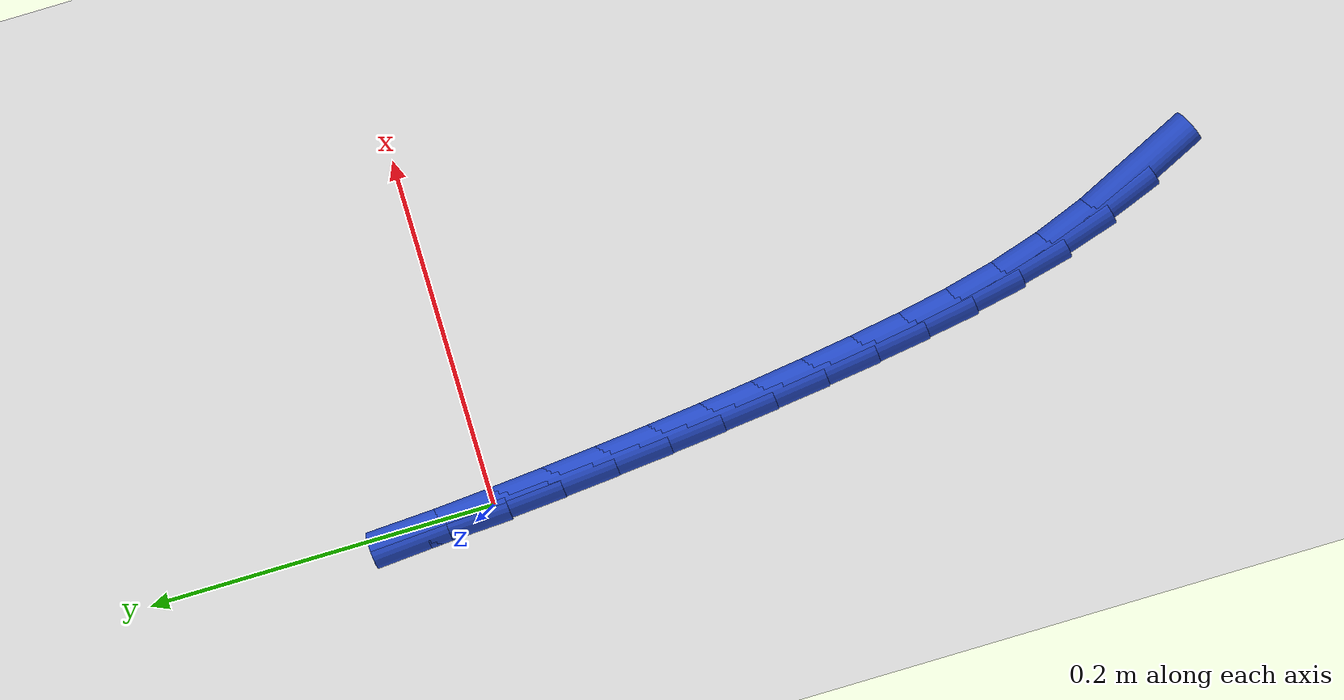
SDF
<sdf version="1.6">
 <world name="default">
  <model name="ground_plane">
   <static>1</static>
   <link name="link">
    <collision name="collision">
     <geometry><plane><normal>0 0 1</normal><size>100 100</size></plane></geometry>
     <surface><friction><ode><mu>100</mu><mu2>50</mu2></ode></friction></surface>
    </collision>
    <visual name="visual">
     <cast_shadows>0</cast_shadows>
     <geometry><plane><normal>0 0 1</normal><size>100 100</size></plane></geometry>
     <material>
      <script><uri>file://media/materials/scripts/gazebo.material</uri><name>Gazebo/WhiteGlow</name></script>
     </material>
    </visual>
   </link>
  </model>
  <model name="line">
   <link name="link_0">
    <pose>-2.42861286636753e-17 3.469446951953614e-17 0.01 0 1.57 -1.4951676682161972</pose>
    <collision name="collision">
     <geometry><cylinder><radius>0.01</radius><length>0.08</length></cylinder></geometry>
    </collision>
    <visual name="visual">
     <material>
      <script><name>Gazebo/Blue</name><uri>file://media/materials/scripts/gazebo.material</uri></script>
     </material>
     <geometry><cylinder><radius>0.01</radius><length>0.08</length></cylinder></geometry>
    </visual>
   </link>
   <link name="link_1">
    <pose>-0.0024231983915060803 0.03197963166220904 0.01 0 1.57 -1.520776995941854</pose>
    <collision name="collision">
     <geometry><cylinder><radius>0.01</radius><length>0.08</length></cylinder></geometry>
    </collision>
    <visual name="visual">
     <material>
      <script><name>Gazebo/Blue</name><uri>file://media/materials/scripts/gazebo.material</uri></script>
     </material>
     <geometry><cylinder><radius>0.01</radius><length>0.08</length></cylinder></geometry>
    </visual>
   </link>
   <link name="link_267">
    <pose>0.07577827136794651 -0.39425759109724995 0.01 0 1.57 -1.1313005059554624</pose>
    <collision name="collision">
     <geometry><cylinder><radius>0.01</radius><length>0.08</length></cylinder></geometry>
    </collision>
    <visual name="visual">
     <material>
      <script><name>Gazebo/Blue</name><uri>file://media/materials/scripts/gazebo.material</uri></script>
     </material>
     <geometry><cylinder><radius>0.01</radius><length>0.08</length></cylinder></geometry>
    </visual>
   </link>
   <link name="link_268">
    <pose>0.06176656681568041 -0.3644559002481637 0.01 0 1.57 -1.2077282652705095</pose>
    <collision name="collision">
     <geometry><cylinder><radius>0.01</radius><length>0.08</length></cylinder></geometry>
    </collision>
    <visual name="visual">
     <material>
      <script><name>Gazebo/Blue</name><uri>file://media/materials/scripts/gazebo.material</uri></script>
     </material>
     <geometry><cylinder><radius>0.01</radius><length>0.08</length></cylinder></geometry>
    </visual>
   </link>
   <link name="link_269">
    <pose>0.05061462172397188 -0.33510169729414585 0.01 0 1.57 -1.2771310065991448</pose>
    <collision name="collision">
     <geometry><cylinder><radius>0.01</radius><length>0.08</length></cylinder></geometry>
    </collision>
    <visual name="visual">
     <material>
      <script><name>Gazebo/Blue</name><uri>file://media/materials/scripts/gazebo.material</uri></script>
     </material>
     <geometry><cylinder><radius>0.01</radius><length>0.08</length></cylinder></geometry>
    </visual>
   </link>
   <link name="link_270">
    <pose>0.0418117071851207 -0.305992386214979 0.01 0 1.57 -1.3356245181980044</pose>
    <collision name="collision">
     <geometry><cylinder><radius>0.01</radius><length>0.08</length></cylinder></geometry>
    </collision>
    <visual name="visual">
     <material>
      <script><name>Gazebo/Blue</name><uri>file://media/materials/scripts/gazebo.material</uri></script>
     </material>
     <geometry><cylinder><radius>0.01</radius><length>0.08</length></cylinder></geometry>
    </visual>
   </link>
   <link name="link_271">
    <pose>0.0348470942914274 -0.2769253709904486 0.01 0 1.57 -1.380266902524612</pose>
    <collision name="collision">
     <geometry><cylinder><radius>0.01</radius><length>0.08</length></cylinder></geometry>
    </collision>
    <visual name="visual">
     <material>
      <script><name>Gazebo/Blue</name><uri>file://media/materials/scripts/gazebo.material</uri></script>
     </material>
     <geometry><cylinder><radius>0.01</radius><length>0.08</length></cylinder></geometry>
    </visual>
   </link>
   <link name="link_272">
    <pose>0.02921005413519169 -0.24769805560033725 0.01 0 1.57 -1.4093241854535394</pose>
    <collision name="collision">
     <geometry><cylinder><radius>0.01</radius><length>0.08</length></cylinder></geometry>
    </collision>
    <visual name="visual">
     <material>
      <script><name>Gazebo/Blue</name><uri>file://media/materials/scripts/gazebo.material</uri></script>
     </material>
     <geometry><cylinder><radius>0.01</radius><length>0.08</length></cylinder></geometry>
    </visual>
   </link>
   <link name="link_273">
    <pose>0.024390119121663615 -0.21810798813060114 0.01 0 1.57 -1.4258320196566878</pose>
    <collision name="collision">
     <geometry><cylinder><radius>0.01</radius><length>0.08</length></cylinder></geometry>
    </collision>
    <visual name="visual">
     <material>
      <script><name>Gazebo/Blue</name><uri>file://media/materials/scripts/gazebo.material</uri></script>
     </material>
     <geometry><cylinder><radius>0.01</radius><length>0.08</length></cylinder></geometry>
    </visual>
   </link>
   <link name="link_274">
    <pose>0.019997517028819824 -0.1880192765076085 0.01 0 1.57 -1.4392234834279731</pose>
    <collision name="collision">
     <geometry><cylinder><radius>0.01</radius><length>0.08</length></cylinder></geometry>
    </collision>
    <visual name="visual">
     <material>
      <script><name>Gazebo/Blue</name><uri>file://media/materials/scripts/gazebo.material</uri></script>
     </material>
     <geometry><cylinder><radius>0.01</radius><length>0.08</length></cylinder></geometry>
    </visual>
   </link>
   <link name="link_275">
    <pose>0.015954451033535315 -0.15746807363587273 0.01 0 1.57 -1.4511260371726444</pose>
    <collision name="collision">
     <geometry><cylinder><radius>0.01</radius><length>0.08</length></cylinder></geometry>
    </collision>
    <visual name="visual">
     <material>
      <script><name>Gazebo/Blue</name><uri>file://media/materials/scripts/gazebo.material</uri></script>
     </material>
     <geometry><cylinder><radius>0.01</radius><length>0.08</length></cylinder></geometry>
    </visual>
   </link>
   <link name="link_276">
    <pose>0.012232859349510045 -0.1265179597855068 0.01 0 1.57 -1.4616543198996976</pose>
    <collision name="collision">
     <geometry><cylinder><radius>0.01</radius><length>0.08</length></cylinder></geometry>
    </collision>
    <visual name="visual">
     <material>
      <script><name>Gazebo/Blue</name><uri>file://media/materials/scripts/gazebo.material</uri></script>
     </material>
     <geometry><cylinder><radius>0.01</radius><length>0.08</length></cylinder></geometry>
    </visual>
   </link>
   <link name="link_277">
    <pose>0.008804680190443948 -0.09523251522662378 0.01 0 1.57 -1.4709046386941216</pose>
    <collision name="collision">
     <geometry><cylinder><radius>0.01</radius><length>0.08</length></cylinder></geometry>
    </collision>
    <visual name="visual">
     <material>
      <script><name>Gazebo/Blue</name><uri>file://media/materials/scripts/gazebo.material</uri></script>
     </material>
     <geometry><cylinder><radius>0.01</radius><length>0.08</length></cylinder></geometry>
    </visual>
   </link>
   <link name="link_278">
    <pose>0.005641851770036961 -0.0636753202293365 0.01 0 1.57 -1.478957000937204</pose>
    <collision name="collision">
     <geometry><cylinder><radius>0.01</radius><length>0.08</length></cylinder></geometry>
    </collision>
    <visual name="visual">
     <material>
      <script><name>Gazebo/Blue</name><uri>file://media/materials/scripts/gazebo.material</uri></script>
     </material>
     <geometry><cylinder><radius>0.01</radius><length>0.08</length></cylinder></geometry>
    </visual>
   </link>
   <link name="link_279">
    <pose>0.002716312301988941 -0.031909955063757024 0.01 0 1.57 -1.4858767540857445</pose>
    <collision name="collision">
     <geometry><cylinder><radius>0.01</radius><length>0.08</length></cylinder></geometry>
    </collision>
    <visual name="visual">
     <material>
      <script><name>Gazebo/Blue</name><uri>file://media/materials/scripts/gazebo.material</uri></script>
     </material>
     <geometry><cylinder><radius>0.01</radius><length>0.08</length></cylinder></geometry>
    </visual>
   </link>
   <link name="link_280">
    <pose>0.0 -2.42861286636753e-16 0.01 0 1.57 -1.4917158725530588</pose>
    <collision name="collision">
     <geometry><cylinder><radius>0.01</radius><length>0.08</length></cylinder></geometry>
    </collision>
    <visual name="visual">
     <material>
      <script><name>Gazebo/Blue</name><uri>file://media/materials/scripts/gazebo.material</uri></script>
     </material>
     <geometry><cylinder><radius>0.01</radius><length>0.08</length></cylinder></geometry>
    </visual>
   </link>
   <link name="link_281">
    <pose>-0.0025351469222300088 0.03199096469182182 0.01 0 1.57 -1.4965139232567257</pose>
    <collision name="collision">
     <geometry><cylinder><radius>0.01</radius><length>0.08</length></cylinder></geometry>
    </collision>
    <visual name="visual">
     <material>
      <script><name>Gazebo/Blue</name><uri>file://media/materials/scripts/gazebo.material</uri></script>
     </material>
     <geometry><cylinder><radius>0.01</radius><length>0.08</length></cylinder></geometry>
    </visual>
   </link>
  </model>
 </world>
</sdf>
